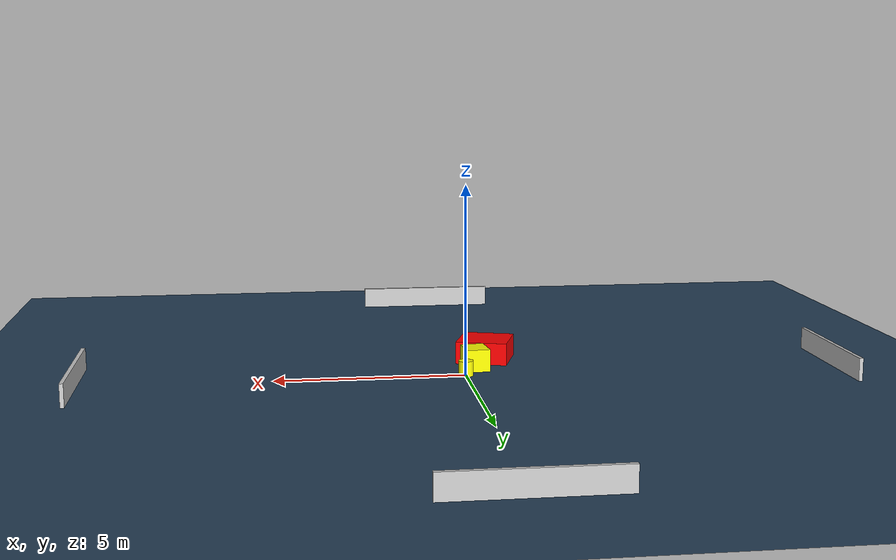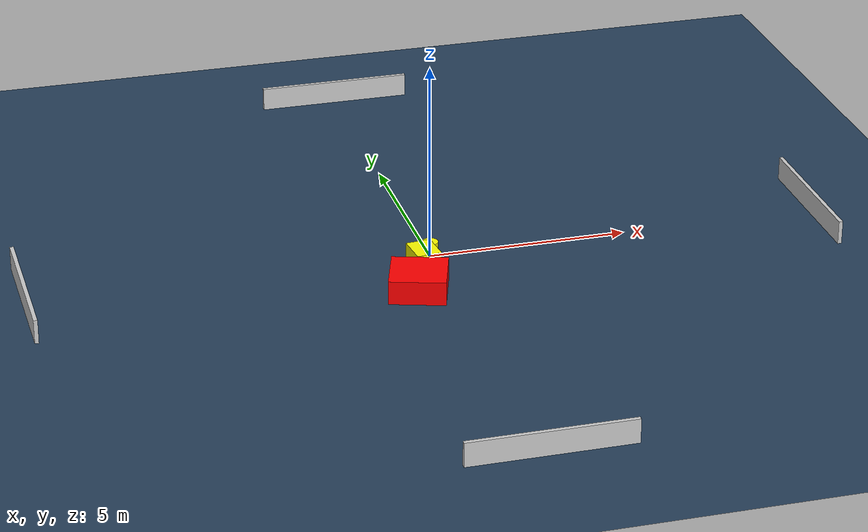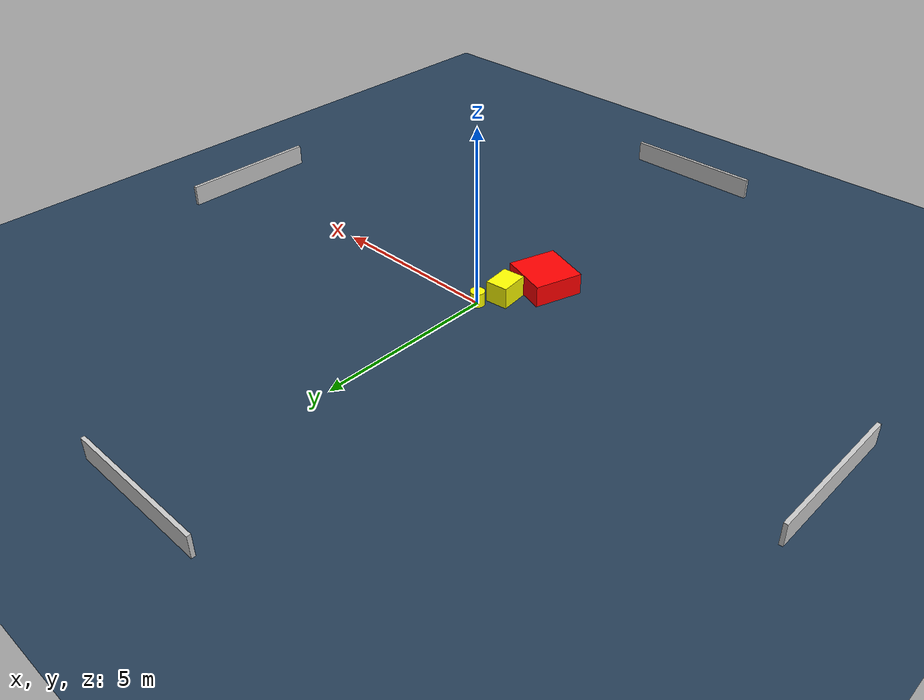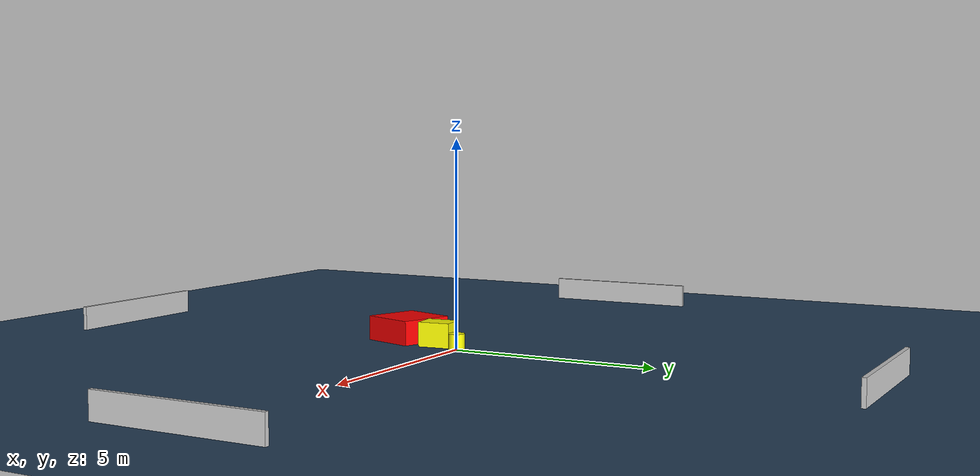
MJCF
<?xml version="1.0" ?>
<mujoco model="generated_environment">
  <option timestep="0.01" integrator="RK4" cone="elliptic"/>
  <default>
    <geom density="1"/>
  </default>
  <asset>
    <texture builtin="gradient" height="3072" name="skybox" rgb1="0.3 0.5 0.7" rgb2="0 0 0" type="skybox" width="512"/>
    <texture builtin="checker" height="300" name="groundplane" rgb1="0.2 0.3 0.4" rgb2="0.1 0.2 0.3" type="2d" width="300"/>
    <material name="groundplane" reflectance="0.2" texrepeat="5 5" texture="groundplane"/>
  </asset>
  <worldbody>
    <light dir="0 0 -1" directional="true" pos="0 0 1.5"/>
    <geom condim="3" friction="0.5 0.005 0.001" material="groundplane" name="floor" pos="0 0 0" size="0 0 0.05" type="plane"/>
    <body name="walls">
      <geom name="wall_1" condim="4" pos="-10.0 0.0 0.3" rgba="0.800000011920929 0.800000011920929 0.800000011920929 1.0" size="0.05 2.0 0.3" type="box"/>
      <geom name="wall_2" condim="4" pos="10.0 0.0 0.3" rgba="0.800000011920929 0.800000011920929 0.800000011920929 1.0" size="0.05 2.0 0.3" type="box"/>
      <geom name="wall_3" condim="4" pos="0.0 -10.0 0.3" rgba="0.800000011920929 0.800000011920929 0.800000011920929 1.0" size="2.0 0.05 0.3" type="box"/>
      <geom name="wall_4" condim="4" pos="0.0 10.0 0.3" rgba="0.800000011920929 0.800000011920929 0.800000011920929 1.0" size="2.0 0.05 0.3" type="box"/>
    </body>
    <body name="robot">
      <joint name="joint_x" type="slide" pos="0 0 0" axis="1 0 0"/>
      <joint name="joint_y" type="slide" pos="0 0 0" axis="0 1 0"/>
      <geom name="robot" type="cylinder" pos="0.0 0.0 0.2" size="0.2 0.2 0.0" mass="5.0" friction="1.0 0.005 0.0001" condim="4" rgba="1.0 1.0 0.0 1.0"/>
    </body>
    <body name="obstacle_1_movable">
      <geom name="obstacle_1_movable" condim="4" pos="-0.3460184437880959 -0.6909557521954588 0.3" euler="0 0 5.9665334735616415" friction="0.0 0.005 0.001" rgba="1.0 1.0 0.0 1.0" size="0.3126352393164137 0.3962367681867962 0.3" type="box" mass="0.1"/>
      <joint type="free"/>
    </body>
    <body name="obstacle_2_static">
      <geom name="obstacle_2_static" condim="4" pos="-0.7759841768657256 -1.8045399800452961 0.3" euler="0 0 72.09828523327074" friction="0.0 0.005 0.001" rgba="1.0 0.0 0.0 1.0" size="0.6831693457678478 0.6939700633377259 0.3" type="box"/>
    </body>
  </worldbody>
  <actuator>
    <motor name="actuator_x" joint="joint_x" gear="1" ctrlrange="-1 1"/>
    <motor name="actuator_y" joint="joint_y" gear="1" ctrlrange="-1 1"/>
  </actuator>
</mujoco>
